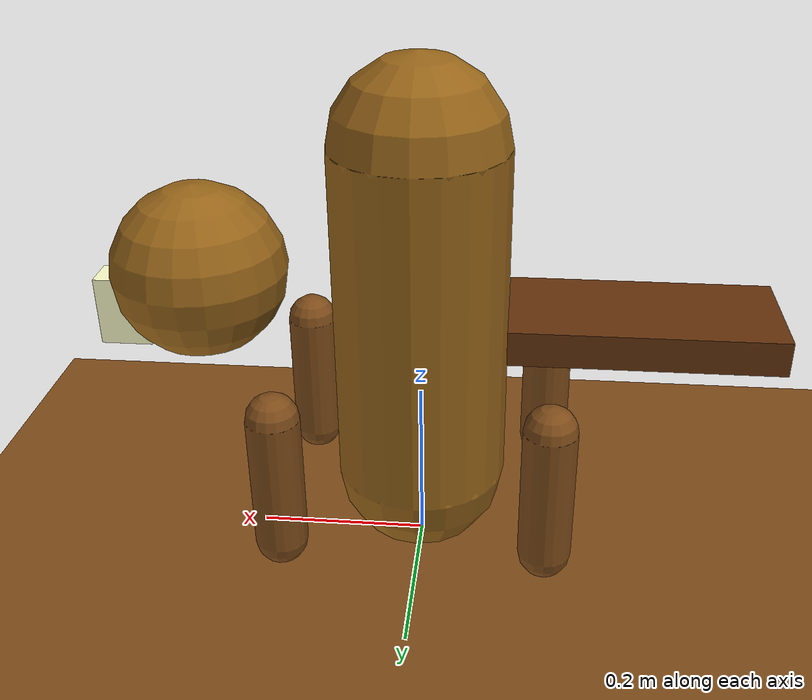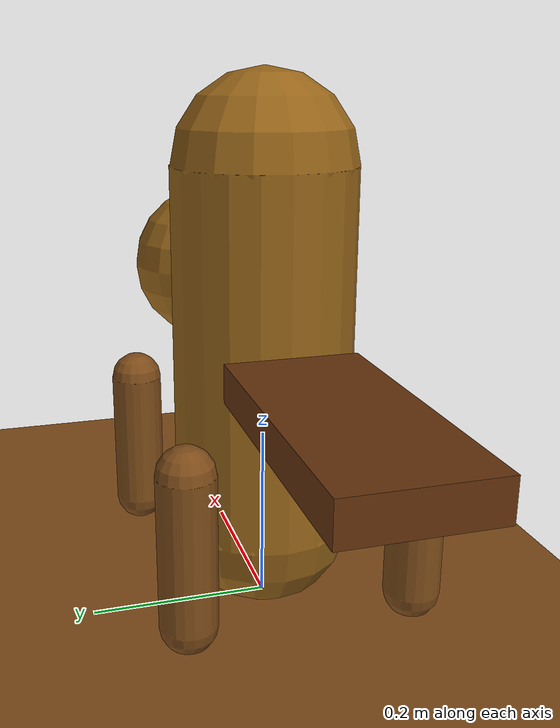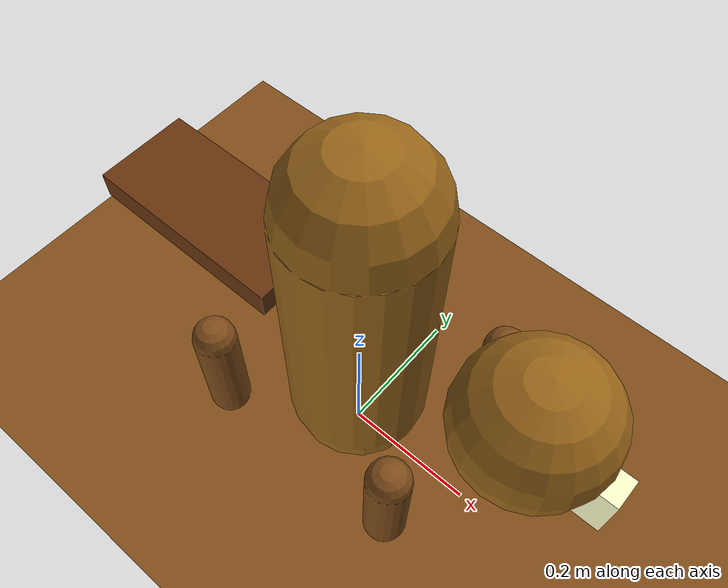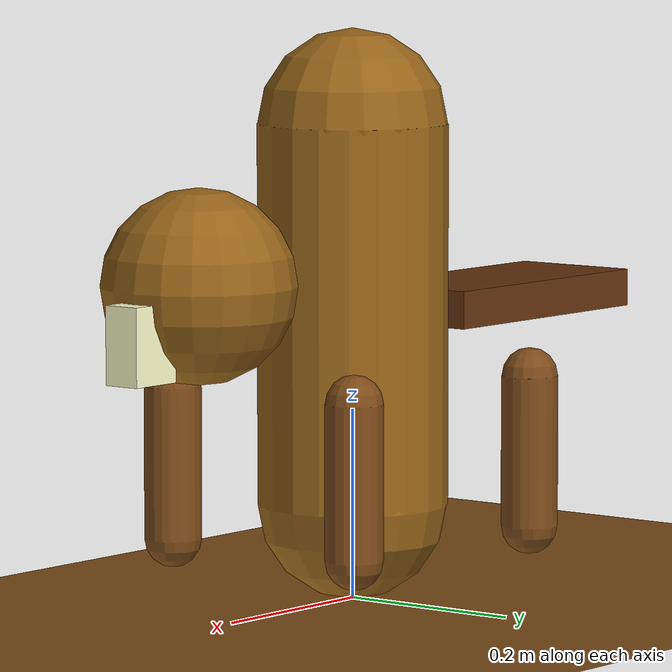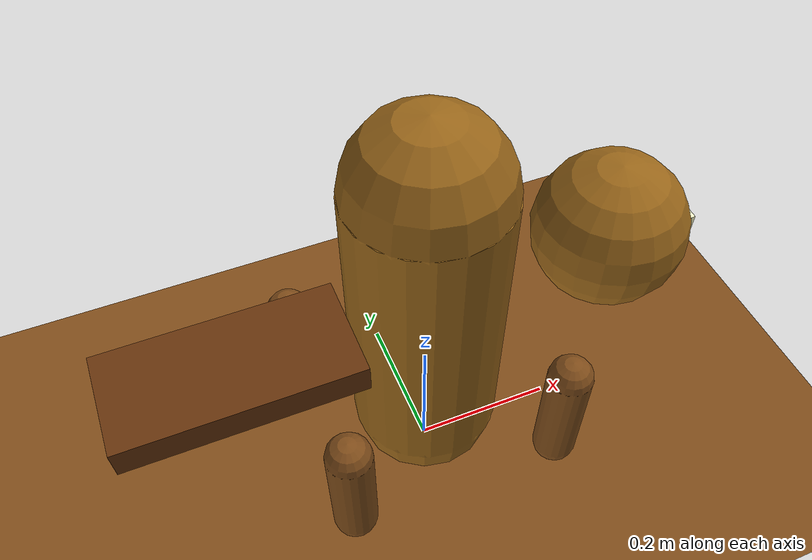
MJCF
<mujoco model="beaverbot">
  <option gravity="0 0 -9.81"/>

  <worldbody>
    <geom name="floor" type="plane" size="5 5 0.1" rgba="0.5 0.3 0.1 1"/>

    <body name="torso" pos="0 0 0.3">
      <joint name="root_x" type="slide" axis="1 0 0"/>
      <joint name="root_z" type="slide" axis="0 0 1"/>
      <joint name="root_rot" type="hinge" axis="0 1 0"/>
      <geom type="capsule" size="0.1 0.2" rgba="0.6 0.4 0.1 1"/>

      <body name="head" pos="0.25 0 0.05">
        <geom type="sphere" size="0.1" rgba="0.6 0.4 0.1 1"/>
        <geom type="box" size="0.03 0.02 0.04" pos="0.09 0 -0.05" rgba="1 1 0.8 1"/>
      </body>

      <body name="tail" pos="-0.25 0 0">
        <joint name="tail_joint" type="hinge" axis="0 1 0" range="-45 45"/>
        <geom type="box" size="0.15 0.07 0.02" rgba="0.4 0.2 0.05 1"/>
      </body>

      <body name="fl_leg" pos="0.15 0.12 -0.15">
        <joint name="fl_hip" type="hinge" axis="0 1 0" range="-45 45"/>
        <geom type="capsule" size="0.03 0.08" rgba="0.5 0.3 0.1 1"/>
      </body>

      <body name="fr_leg" pos="0.15 -0.12 -0.15">
        <joint name="fr_hip" type="hinge" axis="0 1 0" range="-45 45"/>
        <geom type="capsule" size="0.03 0.08" rgba="0.5 0.3 0.1 1"/>
      </body>

      <body name="bl_leg" pos="-0.15 0.12 -0.15">
        <joint name="bl_hip" type="hinge" axis="0 1 0" range="-45 45"/>
        <geom type="capsule" size="0.03 0.08" rgba="0.5 0.3 0.1 1"/>
      </body>

      <body name="br_leg" pos="-0.15 -0.12 -0.15">
        <joint name="br_hip" type="hinge" axis="0 1 0" range="-45 45"/>
        <geom type="capsule" size="0.03 0.08" rgba="0.5 0.3 0.1 1"/>
      </body>
    </body>
  </worldbody>

  <actuator>
    <motor name="fl_motor" joint="fl_hip" gear="50"/>
    <motor name="fr_motor" joint="fr_hip" gear="50"/>
    <motor name="bl_motor" joint="bl_hip" gear="50"/>
    <motor name="br_motor" joint="br_hip" gear="50"/>
    <motor name="tail_motor" joint="tail_joint" gear="20"/>
  </actuator>

</mujoco>
